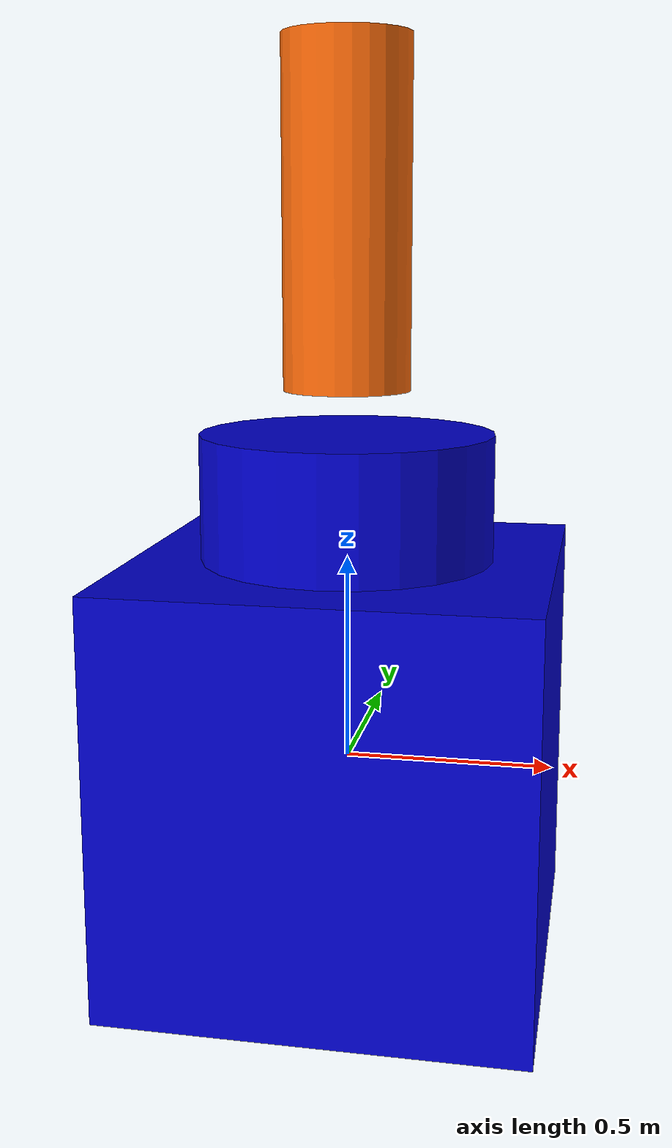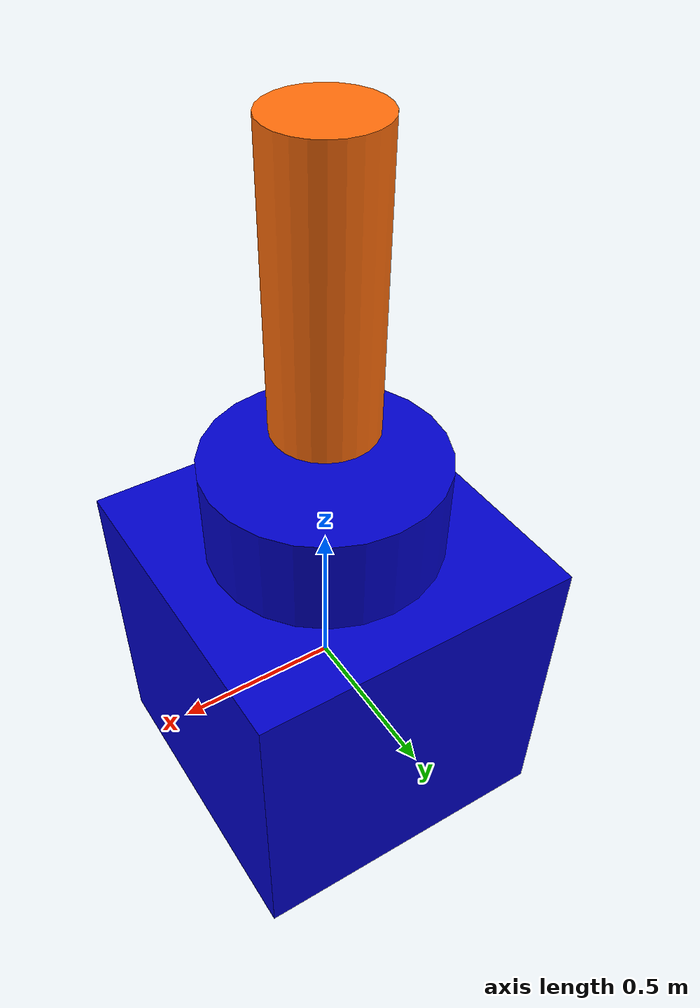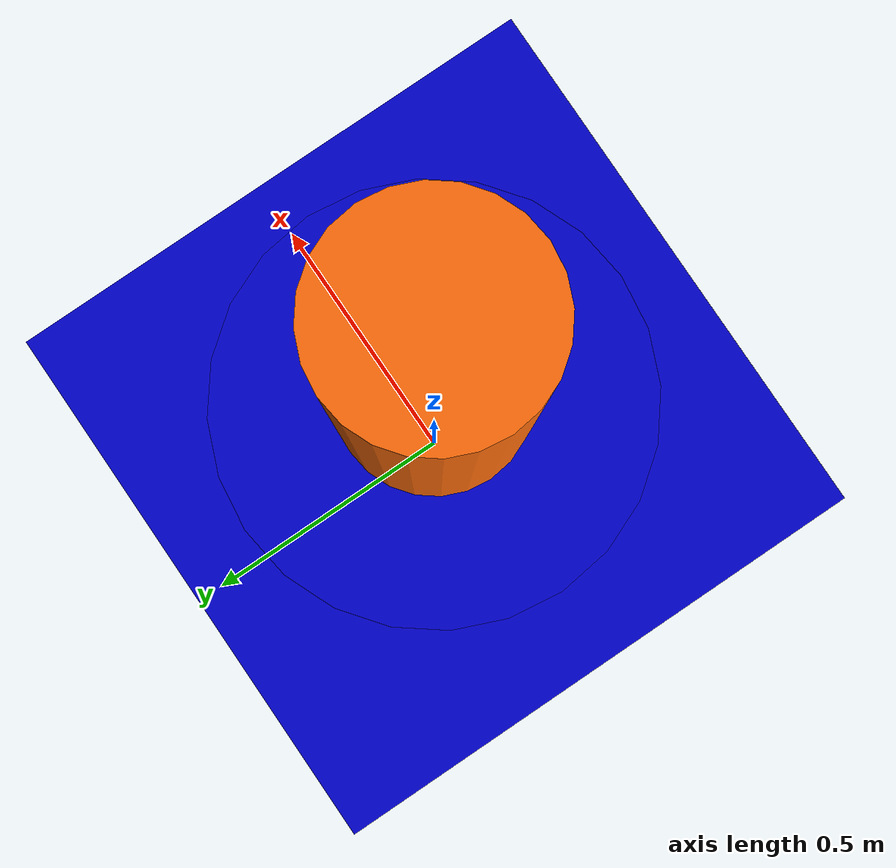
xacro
<?xml version="1.0"?>
<robot xmlns:xacro="http://www.ros.org/wiki/xacro" name="krm">

<xacro:include filename="$(find krm_description)/urdf/materials.xacro"/>
<xacro:include filename="$(find krm_description)/urdf/macros.xacro"/>
<xacro:include filename="$(find krm_description)/urdf/krm.gazebo"/>

    <link name="base_link">
        <visual>
            <origin xyz="0.0 0.0 0.0" rpy="0.0 0.0 0.0"/>
            <geometry>
                <box size="1.0 1.0 1.0"/>
            </geometry>
            <material name="blue"/>
        </visual>

        <collision>
            <origin xyz="0.0 0.0 0.0" rpy="0.0 0.0 0.0"/>
            <geometry>
                <box size="1.0 1.0 1.0"/>
            </geometry>

        </collision>
    </link>

    <xacro:arm_joint name="base_link01"
    parent="base_link"
    child="link_01"
    axis="0 0 1" />

    <xacro:joint_trans name="base_link01"/>

     <link name="link_01">
        <visual>
            <origin xyz="0.0 0.0 0.0" rpy="0.0 0.0 0.0"/>
            <geometry>
                <cylinder radius="0.35" length="0.4"/>
            </geometry>
            <material name="blue"/>
        </visual>

        <collision>
            <origin xyz="0.0 0.0 0.2" rpy="0.0 0.0 0.0"/>
            <geometry>
                <cylinder radius="0.35" length="0.4"/>
            </geometry>

        </collision>
    </link>

    <xacro:arm_joint name="link01_link02"
    parent="link_01"
    child="link_02"
    axis="1 0 0"

    />

     <xacro:joint_trans name="link01_link02"/>

    <xacro:arm_link name="link_02"/>

</robot>

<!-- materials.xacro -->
<robot >

  <material name="black">
    <color rgba="0.0 0.0 0.0 1.0"/>
  </material>

  <material name="blue">
    <color rgba="0.0 0.0 0.8 1.0"/>
  </material>

  <material name="green">
    <color rgba="0.0 0.8 0.0 1.0"/>
  </material>

  <material name="grey">
    <color rgba="0.2 0.2 0.2 1.0"/>
  </material>

  <material name="orange">
    <color rgba="${255/255} ${108/255} ${10/255} 1.0"/>
  </material>

  <material name="brown">
    <color rgba="${222/255} ${207/255} ${195/255} 1.0"/>
  </material>

  <material name="red">
    <color rgba="0.8 0.0 0.0 1.0"/>
  </material>

  <material name="white">
    <color rgba="1.0 1.0 1.0 1.0"/>
  </material>

  <material name="yellow">
    <color rgba="1.0 1.0 0 1.0"/>
  </material>

</robot>

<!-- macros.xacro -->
<robot>

    <macro name="arm_link" params="name">
        <link name="${name}">
            <inertial>
                <origin xyz="0.0 0.0 0.0" rpy="0.0 0.0 0.4"/>
                <mass value="57.904"/>
                <inertia ixx="12.679" ixy="0.0" ixz="0.0" iyy="12.679" iyz="0.0" izz="0.651"/>
            </inertial>

            <visual>
                <origin xyz="0.0 0.0 0.1" rpy="0.0 0.0 0.0"/>
                <geometry>
                    <cylinder radius="0.15" length="0.8"/>
                </geometry>
                <material name="orange"/>
            </visual>

            <collision>
                <origin xyz="0.0 0.0 0.1" rpy="0.0 0.0 0.0"/>
                <geometry>
                    <cylinder radius="0.15" length="0.8"/>
                </geometry>

            </collision>
        </link>
    </macro>

    <macro name="arm_joint" params="name parent child axis">
        <joint name="${name}_joint" type="revolute">
            <origin xyz="0.0 0.0 0.6" rpy="0.0 0.0 0.0"/>
            <parent link="${parent}"/>
            <child link="${child}"/>
            <axis xyz="${axis}"/>
            <limit lower="-3.14" upper="3.14" effort="1000.0" velocity="0.5"/>
        </joint>
    </macro>

    <macro name="joint_trans" params="name ">
        <transmission name="${name}_trans">
            <type>transmission_interface/SimpleTransmission</type>
            <joint name="${name}">
                <hardwareInterface>EffortJointInterface</hardwareInterface>
            </joint>
            <actuator name="${name}_motor">
                <mechanicalReduction>1</mechanicalReduction>
                <hardwareInterface>EffortJointInterface</hardwareInterface>
            </actuator>
        </transmission>

    </macro>

</robot>
